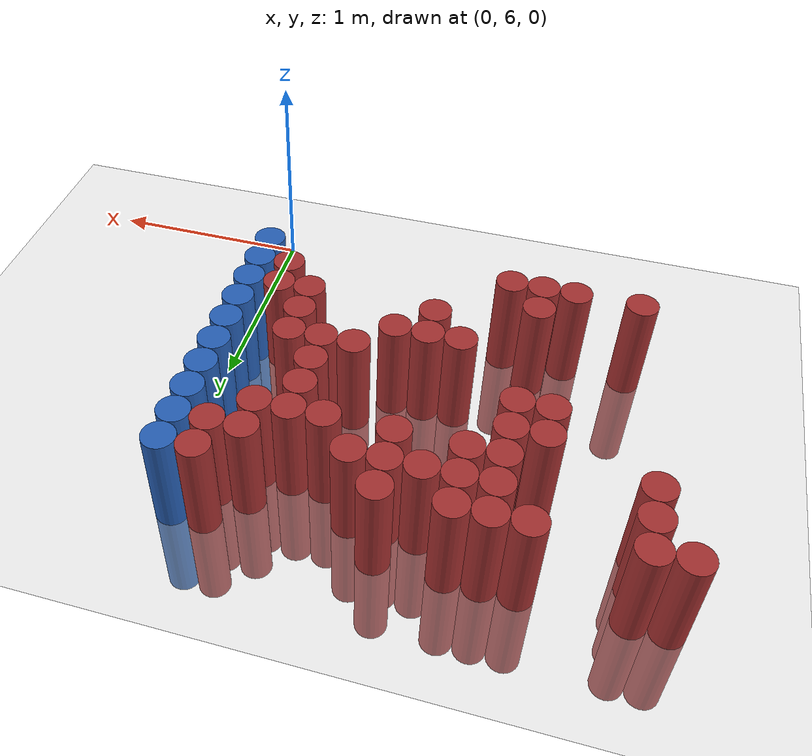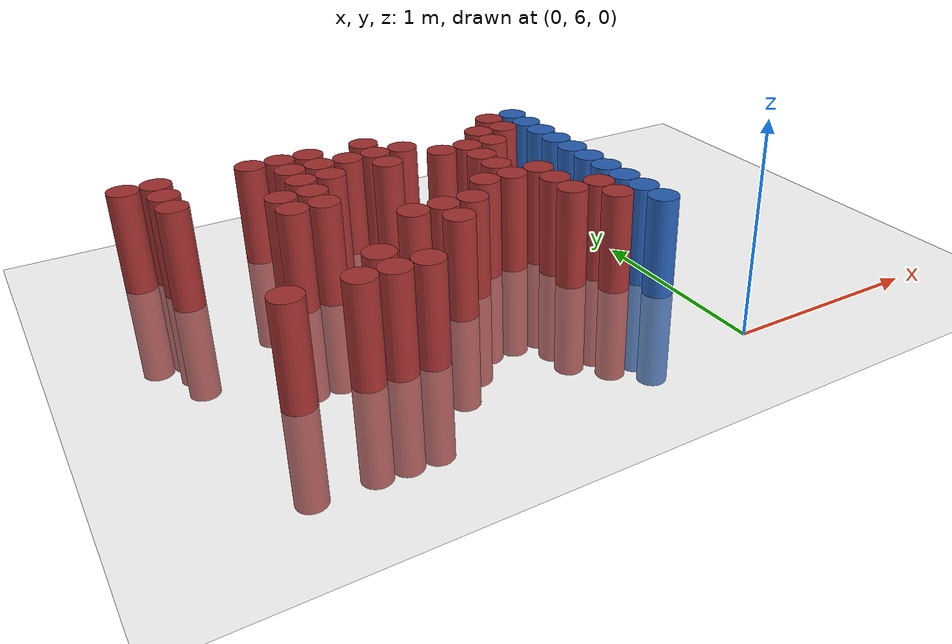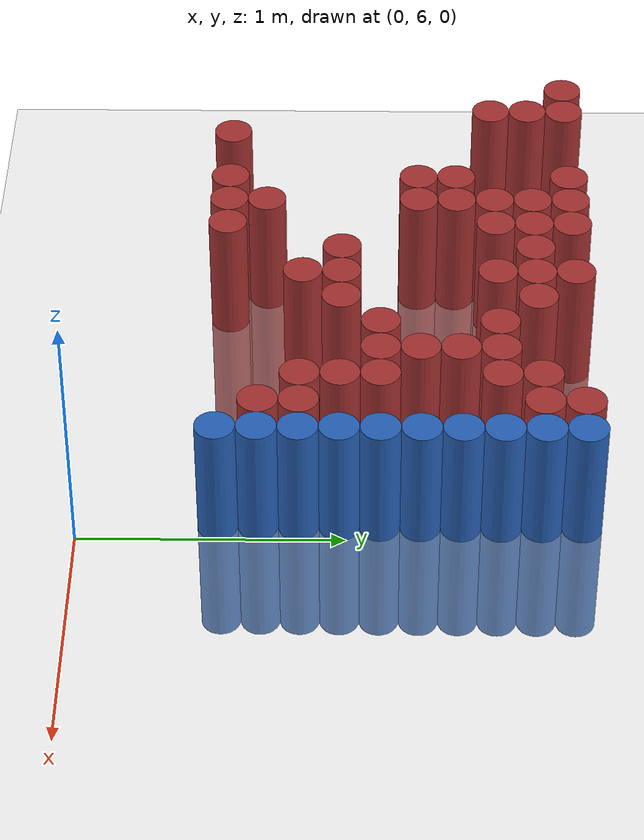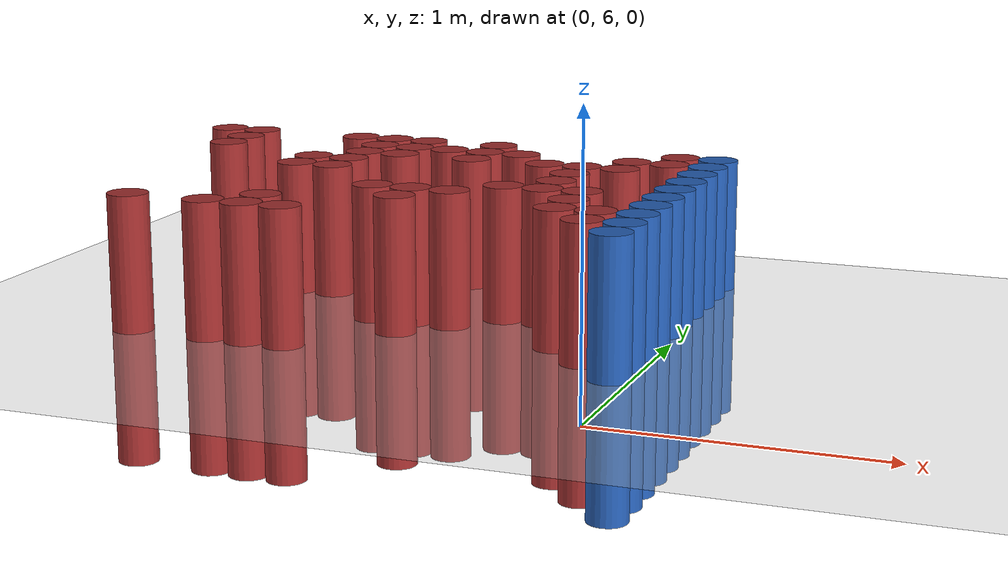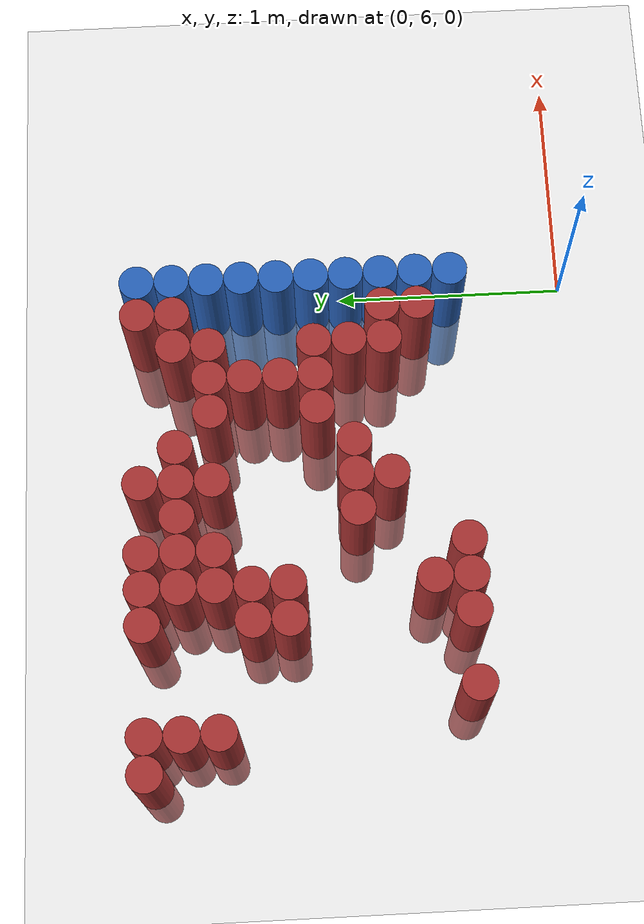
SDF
<sdf version="1.6">
 <world name="default">
  <model name="ground_plane">
   <static>1</static>
   <link name="link">
    <collision name="collision">
     <geometry><plane><normal>0 0 1</normal><size>100 100</size></plane></geometry>
     <surface><friction><ode><mu>100</mu><mu2>50</mu2></ode></friction></surface>
    </collision>
    <visual name="visual">
     <cast_shadows>0</cast_shadows>
     <geometry><plane><normal>0 0 1</normal><size>100 100</size></plane></geometry>
     <material>
      <script><uri>file://media/materials/scripts/gazebo.material</uri><name>Gazebo/Grey</name></script>
     </material>
    </visual>
   </link>
  </model>
  <model name="unit_cylinder_182">
   <static>1</static>
   <pose>-2.175000 7.875000 0.000000 0.000000 0.000000 0.000000</pose>
   <link name="link">
    <inertial>
     <mass>1</mass>
     <inertia><ixx>0.145833</ixx><ixy>0</ixy><ixz>0</ixz><iyy>0.145833</iyy><iyz>0</iyz><izz>0.125</izz></inertia>
    </inertial>
    <collision name="collision">
     <geometry><cylinder><radius>0.075000</radius><length>1</length></cylinder></geometry>
    </collision>
    <visual name="visual">
     <geometry><cylinder><radius>0.075000</radius><length>1</length></cylinder></geometry>
     <material>
      <ambient>0.648000 0.192000 0.192000 1</ambient>
      <diffuse>0.648000 0.192000 0.192000 1</diffuse>
     </material>
     <material>
      <script><name>Gazebo/Grey</name><uri>file://media/materials/scripts/gazebo.material</uri></script>
     </material>
    </visual>
   </link>
  </model>
  <model name="unit_cylinder_193">
   <static>1</static>
   <pose>-2.025000 7.575000 0.000000 0.000000 0.000000 0.000000</pose>
   <link name="link">
    <inertial>
     <mass>1</mass>
     <inertia><ixx>0.145833</ixx><ixy>0</ixy><ixz>0</ixz><iyy>0.145833</iyy><iyz>0</iyz><izz>0.125</izz></inertia>
    </inertial>
    <collision name="collision">
     <geometry><cylinder><radius>0.075000</radius><length>1</length></cylinder></geometry>
    </collision>
    <visual name="visual">
     <geometry><cylinder><radius>0.075000</radius><length>1</length></cylinder></geometry>
     <material>
      <ambient>0.648000 0.192000 0.192000 1</ambient>
      <diffuse>0.648000 0.192000 0.192000 1</diffuse>
     </material>
     <material>
      <script><name>Gazebo/Grey</name><uri>file://media/materials/scripts/gazebo.material</uri></script>
     </material>
    </visual>
   </link>
  </model>
  <model name="unit_cylinder_194">
   <static>1</static>
   <pose>-2.025000 7.725000 0.000000 0.000000 0.000000 0.000000</pose>
   <link name="link">
    <inertial>
     <mass>1</mass>
     <inertia><ixx>0.145833</ixx><ixy>0</ixy><ixz>0</ixz><iyy>0.145833</iyy><iyz>0</iyz><izz>0.125</izz></inertia>
    </inertial>
    <collision name="collision">
     <geometry><cylinder><radius>0.075000</radius><length>1</length></cylinder></geometry>
    </collision>
    <visual name="visual">
     <geometry><cylinder><radius>0.075000</radius><length>1</length></cylinder></geometry>
     <material>
      <ambient>0.648000 0.192000 0.192000 1</ambient>
      <diffuse>0.648000 0.192000 0.192000 1</diffuse>
     </material>
     <material>
      <script><name>Gazebo/Grey</name><uri>file://media/materials/scripts/gazebo.material</uri></script>
     </material>
    </visual>
   </link>
  </model>
  <model name="unit_cylinder_195">
   <static>1</static>
   <pose>-2.025000 7.875000 0.000000 0.000000 0.000000 0.000000</pose>
   <link name="link">
    <inertial>
     <mass>1</mass>
     <inertia><ixx>0.145833</ixx><ixy>0</ixy><ixz>0</ixz><iyy>0.145833</iyy><iyz>0</iyz><izz>0.125</izz></inertia>
    </inertial>
    <collision name="collision">
     <geometry><cylinder><radius>0.075000</radius><length>1</length></cylinder></geometry>
    </collision>
    <visual name="visual">
     <geometry><cylinder><radius>0.075000</radius><length>1</length></cylinder></geometry>
     <material>
      <ambient>0.648000 0.192000 0.192000 1</ambient>
      <diffuse>0.648000 0.192000 0.192000 1</diffuse>
     </material>
     <material>
      <script><name>Gazebo/Grey</name><uri>file://media/materials/scripts/gazebo.material</uri></script>
     </material>
    </visual>
   </link>
  </model>
  <model name="unit_cylinder_202">
   <static>1</static>
   <pose>-1.875000 6.525000 0.000000 0.000000 0.000000 0.000000</pose>
   <link name="link">
    <inertial>
     <mass>1</mass>
     <inertia><ixx>0.145833</ixx><ixy>0</ixy><ixz>0</ixz><iyy>0.145833</iyy><iyz>0</iyz><izz>0.125</izz></inertia>
    </inertial>
    <collision name="collision">
     <geometry><cylinder><radius>0.075000</radius><length>1</length></cylinder></geometry>
    </collision>
    <visual name="visual">
     <geometry><cylinder><radius>0.075000</radius><length>1</length></cylinder></geometry>
     <material>
      <ambient>0.648000 0.192000 0.192000 1</ambient>
      <diffuse>0.648000 0.192000 0.192000 1</diffuse>
     </material>
     <material>
      <script><name>Gazebo/Grey</name><uri>file://media/materials/scripts/gazebo.material</uri></script>
     </material>
    </visual>
   </link>
  </model>
  <model name="unit_cylinder_213">
   <static>1</static>
   <pose>-1.575000 6.525000 0.000000 0.000000 0.000000 0.000000</pose>
   <link name="link">
    <inertial>
     <mass>1</mass>
     <inertia><ixx>0.145833</ixx><ixy>0</ixy><ixz>0</ixz><iyy>0.145833</iyy><iyz>0</iyz><izz>0.125</izz></inertia>
    </inertial>
    <collision name="collision">
     <geometry><cylinder><radius>0.075000</radius><length>1</length></cylinder></geometry>
    </collision>
    <visual name="visual">
     <geometry><cylinder><radius>0.075000</radius><length>1</length></cylinder></geometry>
     <material>
      <ambient>0.648000 0.192000 0.192000 1</ambient>
      <diffuse>0.648000 0.192000 0.192000 1</diffuse>
     </material>
     <material>
      <script><name>Gazebo/Grey</name><uri>file://media/materials/scripts/gazebo.material</uri></script>
     </material>
    </visual>
   </link>
  </model>
  <model name="unit_cylinder_214">
   <static>1</static>
   <pose>-1.575000 7.275000 0.000000 0.000000 0.000000 0.000000</pose>
   <link name="link">
    <inertial>
     <mass>1</mass>
     <inertia><ixx>0.145833</ixx><ixy>0</ixy><ixz>0</ixz><iyy>0.145833</iyy><iyz>0</iyz><izz>0.125</izz></inertia>
    </inertial>
    <collision name="collision">
     <geometry><cylinder><radius>0.075000</radius><length>1</length></cylinder></geometry>
    </collision>
    <visual name="visual">
     <geometry><cylinder><radius>0.075000</radius><length>1</length></cylinder></geometry>
     <material>
      <ambient>0.648000 0.192000 0.192000 1</ambient>
      <diffuse>0.648000 0.192000 0.192000 1</diffuse>
     </material>
     <material>
      <script><name>Gazebo/Grey</name><uri>file://media/materials/scripts/gazebo.material</uri></script>
     </material>
    </visual>
   </link>
  </model>
  <model name="unit_cylinder_215">
   <static>1</static>
   <pose>-1.575000 7.425000 0.000000 0.000000 0.000000 0.000000</pose>
   <link name="link">
    <inertial>
     <mass>1</mass>
     <inertia><ixx>0.145833</ixx><ixy>0</ixy><ixz>0</ixz><iyy>0.145833</iyy><iyz>0</iyz><izz>0.125</izz></inertia>
    </inertial>
    <collision name="collision">
     <geometry><cylinder><radius>0.075000</radius><length>1</length></cylinder></geometry>
    </collision>
    <visual name="visual">
     <geometry><cylinder><radius>0.075000</radius><length>1</length></cylinder></geometry>
     <material>
      <ambient>0.648000 0.192000 0.192000 1</ambient>
      <diffuse>0.648000 0.192000 0.192000 1</diffuse>
     </material>
     <material>
      <script><name>Gazebo/Grey</name><uri>file://media/materials/scripts/gazebo.material</uri></script>
     </material>
    </visual>
   </link>
  </model>
  <model name="unit_cylinder_216">
   <static>1</static>
   <pose>-1.575000 7.875000 0.000000 0.000000 0.000000 0.000000</pose>
   <link name="link">
    <inertial>
     <mass>1</mass>
     <inertia><ixx>0.145833</ixx><ixy>0</ixy><ixz>0</ixz><iyy>0.145833</iyy><iyz>0</iyz><izz>0.125</izz></inertia>
    </inertial>
    <collision name="collision">
     <geometry><cylinder><radius>0.075000</radius><length>1</length></cylinder></geometry>
    </collision>
    <visual name="visual">
     <geometry><cylinder><radius>0.075000</radius><length>1</length></cylinder></geometry>
     <material>
      <ambient>0.648000 0.192000 0.192000 1</ambient>
      <diffuse>0.648000 0.192000 0.192000 1</diffuse>
     </material>
     <material>
      <script><name>Gazebo/Grey</name><uri>file://media/materials/scripts/gazebo.material</uri></script>
     </material>
    </visual>
   </link>
  </model>
  <model name="unit_cylinder_223">
   <static>1</static>
   <pose>-1.425000 6.525000 0.000000 0.000000 0.000000 0.000000</pose>
   <link name="link">
    <inertial>
     <mass>1</mass>
     <inertia><ixx>0.145833</ixx><ixy>0</ixy><ixz>0</ixz><iyy>0.145833</iyy><iyz>0</iyz><izz>0.125</izz></inertia>
    </inertial>
    <collision name="collision">
     <geometry><cylinder><radius>0.075000</radius><length>1</length></cylinder></geometry>
    </collision>
    <visual name="visual">
     <geometry><cylinder><radius>0.075000</radius><length>1</length></cylinder></geometry>
     <material>
      <ambient>0.648000 0.192000 0.192000 1</ambient>
      <diffuse>0.648000 0.192000 0.192000 1</diffuse>
     </material>
     <material>
      <script><name>Gazebo/Grey</name><uri>file://media/materials/scripts/gazebo.material</uri></script>
     </material>
    </visual>
   </link>
  </model>
  <model name="unit_cylinder_224">
   <static>1</static>
   <pose>-1.425000 6.675000 0.000000 0.000000 0.000000 0.000000</pose>
   <link name="link">
    <inertial>
     <mass>1</mass>
     <inertia><ixx>0.145833</ixx><ixy>0</ixy><ixz>0</ixz><iyy>0.145833</iyy><iyz>0</iyz><izz>0.125</izz></inertia>
    </inertial>
    <collision name="collision">
     <geometry><cylinder><radius>0.075000</radius><length>1</length></cylinder></geometry>
    </collision>
    <visual name="visual">
     <geometry><cylinder><radius>0.075000</radius><length>1</length></cylinder></geometry>
     <material>
      <ambient>0.648000 0.192000 0.192000 1</ambient>
      <diffuse>0.648000 0.192000 0.192000 1</diffuse>
     </material>
     <material>
      <script><name>Gazebo/Grey</name><uri>file://media/materials/scripts/gazebo.material</uri></script>
     </material>
    </visual>
   </link>
  </model>
  <model name="unit_cylinder_225">
   <static>1</static>
   <pose>-1.425000 7.275000 0.000000 0.000000 0.000000 0.000000</pose>
   <link name="link">
    <inertial>
     <mass>1</mass>
     <inertia><ixx>0.145833</ixx><ixy>0</ixy><ixz>0</ixz><iyy>0.145833</iyy><iyz>0</iyz><izz>0.125</izz></inertia>
    </inertial>
    <collision name="collision">
     <geometry><cylinder><radius>0.075000</radius><length>1</length></cylinder></geometry>
    </collision>
    <visual name="visual">
     <geometry><cylinder><radius>0.075000</radius><length>1</length></cylinder></geometry>
     <material>
      <ambient>0.648000 0.192000 0.192000 1</ambient>
      <diffuse>0.648000 0.192000 0.192000 1</diffuse>
     </material>
     <material>
      <script><name>Gazebo/Grey</name><uri>file://media/materials/scripts/gazebo.material</uri></script>
     </material>
    </visual>
   </link>
  </model>
  <model name="unit_cylinder_226">
   <static>1</static>
   <pose>-1.425000 7.425000 0.000000 0.000000 0.000000 0.000000</pose>
   <link name="link">
    <inertial>
     <mass>1</mass>
     <inertia><ixx>0.145833</ixx><ixy>0</ixy><ixz>0</ixz><iyy>0.145833</iyy><iyz>0</iyz><izz>0.125</izz></inertia>
    </inertial>
    <collision name="collision">
     <geometry><cylinder><radius>0.075000</radius><length>1</length></cylinder></geometry>
    </collision>
    <visual name="visual">
     <geometry><cylinder><radius>0.075000</radius><length>1</length></cylinder></geometry>
     <material>
      <ambient>0.648000 0.192000 0.192000 1</ambient>
      <diffuse>0.648000 0.192000 0.192000 1</diffuse>
     </material>
     <material>
      <script><name>Gazebo/Grey</name><uri>file://media/materials/scripts/gazebo.material</uri></script>
     </material>
    </visual>
   </link>
  </model>
  <model name="unit_cylinder_227">
   <static>1</static>
   <pose>-1.425000 7.575000 0.000000 0.000000 0.000000 0.000000</pose>
   <link name="link">
    <inertial>
     <mass>1</mass>
     <inertia><ixx>0.145833</ixx><ixy>0</ixy><ixz>0</ixz><iyy>0.145833</iyy><iyz>0</iyz><izz>0.125</izz></inertia>
    </inertial>
    <collision name="collision">
     <geometry><cylinder><radius>0.075000</radius><length>1</length></cylinder></geometry>
    </collision>
    <visual name="visual">
     <geometry><cylinder><radius>0.075000</radius><length>1</length></cylinder></geometry>
     <material>
      <ambient>0.648000 0.192000 0.192000 1</ambient>
      <diffuse>0.648000 0.192000 0.192000 1</diffuse>
     </material>
     <material>
      <script><name>Gazebo/Grey</name><uri>file://media/materials/scripts/gazebo.material</uri></script>
     </material>
    </visual>
   </link>
  </model>
  <model name="unit_cylinder_228">
   <static>1</static>
   <pose>-1.425000 7.725000 0.000000 0.000000 0.000000 0.000000</pose>
   <link name="link">
    <inertial>
     <mass>1</mass>
     <inertia><ixx>0.145833</ixx><ixy>0</ixy><ixz>0</ixz><iyy>0.145833</iyy><iyz>0</iyz><izz>0.125</izz></inertia>
    </inertial>
    <collision name="collision">
     <geometry><cylinder><radius>0.075000</radius><length>1</length></cylinder></geometry>
    </collision>
    <visual name="visual">
     <geometry><cylinder><radius>0.075000</radius><length>1</length></cylinder></geometry>
     <material>
      <ambient>0.648000 0.192000 0.192000 1</ambient>
      <diffuse>0.648000 0.192000 0.192000 1</diffuse>
     </material>
     <material>
      <script><name>Gazebo/Grey</name><uri>file://media/materials/scripts/gazebo.material</uri></script>
     </material>
    </visual>
   </link>
  </model>
  <model name="unit_cylinder_229">
   <static>1</static>
   <pose>-1.425000 7.875000 0.000000 0.000000 0.000000 0.000000</pose>
   <link name="link">
    <inertial>
     <mass>1</mass>
     <inertia><ixx>0.145833</ixx><ixy>0</ixy><ixz>0</ixz><iyy>0.145833</iyy><iyz>0</iyz><izz>0.125</izz></inertia>
    </inertial>
    <collision name="collision">
     <geometry><cylinder><radius>0.075000</radius><length>1</length></cylinder></geometry>
    </collision>
    <visual name="visual">
     <geometry><cylinder><radius>0.075000</radius><length>1</length></cylinder></geometry>
     <material>
      <ambient>0.648000 0.192000 0.192000 1</ambient>
      <diffuse>0.648000 0.192000 0.192000 1</diffuse>
     </material>
     <material>
      <script><name>Gazebo/Grey</name><uri>file://media/materials/scripts/gazebo.material</uri></script>
     </material>
    </visual>
   </link>
  </model>
  <model name="unit_cylinder_235">
   <static>1</static>
   <pose>-1.275000 6.525000 0.000000 0.000000 0.000000 0.000000</pose>
   <link name="link">
    <inertial>
     <mass>1</mass>
     <inertia><ixx>0.145833</ixx><ixy>0</ixy><ixz>0</ixz><iyy>0.145833</iyy><iyz>0</iyz><izz>0.125</izz></inertia>
    </inertial>
    <collision name="collision">
     <geometry><cylinder><radius>0.075000</radius><length>1</length></cylinder></geometry>
    </collision>
    <visual name="visual">
     <geometry><cylinder><radius>0.075000</radius><length>1</length></cylinder></geometry>
     <material>
      <ambient>0.648000 0.192000 0.192000 1</ambient>
      <diffuse>0.648000 0.192000 0.192000 1</diffuse>
     </material>
     <material>
      <script><name>Gazebo/Grey</name><uri>file://media/materials/scripts/gazebo.material</uri></script>
     </material>
    </visual>
   </link>
  </model>
  <model name="unit_cylinder_236">
   <static>1</static>
   <pose>-1.275000 7.575000 0.000000 0.000000 0.000000 0.000000</pose>
   <link name="link">
    <inertial>
     <mass>1</mass>
     <inertia><ixx>0.145833</ixx><ixy>0</ixy><ixz>0</ixz><iyy>0.145833</iyy><iyz>0</iyz><izz>0.125</izz></inertia>
    </inertial>
    <collision name="collision">
     <geometry><cylinder><radius>0.075000</radius><length>1</length></cylinder></geometry>
    </collision>
    <visual name="visual">
     <geometry><cylinder><radius>0.075000</radius><length>1</length></cylinder></geometry>
     <material>
      <ambient>0.648000 0.192000 0.192000 1</ambient>
      <diffuse>0.648000 0.192000 0.192000 1</diffuse>
     </material>
     <material>
      <script><name>Gazebo/Grey</name><uri>file://media/materials/scripts/gazebo.material</uri></script>
     </material>
    </visual>
   </link>
  </model>
  <model name="unit_cylinder_237">
   <static>1</static>
   <pose>-1.275000 7.725000 0.000000 0.000000 0.000000 0.000000</pose>
   <link name="link">
    <inertial>
     <mass>1</mass>
     <inertia><ixx>0.145833</ixx><ixy>0</ixy><ixz>0</ixz><iyy>0.145833</iyy><iyz>0</iyz><izz>0.125</izz></inertia>
    </inertial>
    <collision name="collision">
     <geometry><cylinder><radius>0.075000</radius><length>1</length></cylinder></geometry>
    </collision>
    <visual name="visual">
     <geometry><cylinder><radius>0.075000</radius><length>1</length></cylinder></geometry>
     <material>
      <ambient>0.648000 0.192000 0.192000 1</ambient>
      <diffuse>0.648000 0.192000 0.192000 1</diffuse>
     </material>
     <material>
      <script><name>Gazebo/Grey</name><uri>file://media/materials/scripts/gazebo.material</uri></script>
     </material>
    </visual>
   </link>
  </model>
  <model name="unit_cylinder_238">
   <static>1</static>
   <pose>-1.275000 7.875000 0.000000 0.000000 0.000000 0.000000</pose>
   <link name="link">
    <inertial>
     <mass>1</mass>
     <inertia><ixx>0.145833</ixx><ixy>0</ixy><ixz>0</ixz><iyy>0.145833</iyy><iyz>0</iyz><izz>0.125</izz></inertia>
    </inertial>
    <collision name="collision">
     <geometry><cylinder><radius>0.075000</radius><length>1</length></cylinder></geometry>
    </collision>
    <visual name="visual">
     <geometry><cylinder><radius>0.075000</radius><length>1</length></cylinder></geometry>
     <material>
      <ambient>0.648000 0.192000 0.192000 1</ambient>
      <diffuse>0.648000 0.192000 0.192000 1</diffuse>
     </material>
     <material>
      <script><name>Gazebo/Grey</name><uri>file://media/materials/scripts/gazebo.material</uri></script>
     </material>
    </visual>
   </link>
  </model>
  <model name="unit_cylinder_245">
   <static>1</static>
   <pose>-1.125000 6.975000 0.000000 0.000000 0.000000 0.000000</pose>
   <link name="link">
    <inertial>
     <mass>1</mass>
     <inertia><ixx>0.145833</ixx><ixy>0</ixy><ixz>0</ixz><iyy>0.145833</iyy><iyz>0</iyz><izz>0.125</izz></inertia>
    </inertial>
    <collision name="collision">
     <geometry><cylinder><radius>0.075000</radius><length>1</length></cylinder></geometry>
    </collision>
    <visual name="visual">
     <geometry><cylinder><radius>0.075000</radius><length>1</length></cylinder></geometry>
     <material>
      <ambient>0.648000 0.192000 0.192000 1</ambient>
      <diffuse>0.648000 0.192000 0.192000 1</diffuse>
     </material>
     <material>
      <script><name>Gazebo/Grey</name><uri>file://media/materials/scripts/gazebo.material</uri></script>
     </material>
    </visual>
   </link>
  </model>
  <model name="unit_cylinder_246">
   <static>1</static>
   <pose>-1.125000 7.725000 0.000000 0.000000 0.000000 0.000000</pose>
   <link name="link">
    <inertial>
     <mass>1</mass>
     <inertia><ixx>0.145833</ixx><ixy>0</ixy><ixz>0</ixz><iyy>0.145833</iyy><iyz>0</iyz><izz>0.125</izz></inertia>
    </inertial>
    <collision name="collision">
     <geometry><cylinder><radius>0.075000</radius><length>1</length></cylinder></geometry>
    </collision>
    <visual name="visual">
     <geometry><cylinder><radius>0.075000</radius><length>1</length></cylinder></geometry>
     <material>
      <ambient>0.648000 0.192000 0.192000 1</ambient>
      <diffuse>0.648000 0.192000 0.192000 1</diffuse>
     </material>
     <material>
      <script><name>Gazebo/Grey</name><uri>file://media/materials/scripts/gazebo.material</uri></script>
     </material>
    </visual>
   </link>
  </model>
  <model name="unit_cylinder_252">
   <static>1</static>
   <pose>-0.975000 6.825000 0.000000 0.000000 0.000000 0.000000</pose>
   <link name="link">
    <inertial>
     <mass>1</mass>
     <inertia><ixx>0.145833</ixx><ixy>0</ixy><ixz>0</ixz><iyy>0.145833</iyy><iyz>0</iyz><izz>0.125</izz></inertia>
    </inertial>
    <collision name="collision">
     <geometry><cylinder><radius>0.075000</radius><length>1</length></cylinder></geometry>
    </collision>
    <visual name="visual">
     <geometry><cylinder><radius>0.075000</radius><length>1</length></cylinder></geometry>
     <material>
      <ambient>0.648000 0.192000 0.192000 1</ambient>
      <diffuse>0.648000 0.192000 0.192000 1</diffuse>
     </material>
     <material>
      <script><name>Gazebo/Grey</name><uri>file://media/materials/scripts/gazebo.material</uri></script>
     </material>
    </visual>
   </link>
  </model>
  <model name="unit_cylinder_253">
   <static>1</static>
   <pose>-0.975000 6.975000 0.000000 0.000000 0.000000 0.000000</pose>
   <link name="link">
    <inertial>
     <mass>1</mass>
     <inertia><ixx>0.145833</ixx><ixy>0</ixy><ixz>0</ixz><iyy>0.145833</iyy><iyz>0</iyz><izz>0.125</izz></inertia>
    </inertial>
    <collision name="collision">
     <geometry><cylinder><radius>0.075000</radius><length>1</length></cylinder></geometry>
    </collision>
    <visual name="visual">
     <geometry><cylinder><radius>0.075000</radius><length>1</length></cylinder></geometry>
     <material>
      <ambient>0.648000 0.192000 0.192000 1</ambient>
      <diffuse>0.648000 0.192000 0.192000 1</diffuse>
     </material>
     <material>
      <script><name>Gazebo/Grey</name><uri>file://media/materials/scripts/gazebo.material</uri></script>
     </material>
    </visual>
   </link>
  </model>
  <model name="unit_cylinder_254">
   <static>1</static>
   <pose>-0.975000 7.575000 0.000000 0.000000 0.000000 0.000000</pose>
   <link name="link">
    <inertial>
     <mass>1</mass>
     <inertia><ixx>0.145833</ixx><ixy>0</ixy><ixz>0</ixz><iyy>0.145833</iyy><iyz>0</iyz><izz>0.125</izz></inertia>
    </inertial>
    <collision name="collision">
     <geometry><cylinder><radius>0.075000</radius><length>1</length></cylinder></geometry>
    </collision>
    <visual name="visual">
     <geometry><cylinder><radius>0.075000</radius><length>1</length></cylinder></geometry>
     <material>
      <ambient>0.648000 0.192000 0.192000 1</ambient>
      <diffuse>0.648000 0.192000 0.192000 1</diffuse>
     </material>
     <material>
      <script><name>Gazebo/Grey</name><uri>file://media/materials/scripts/gazebo.material</uri></script>
     </material>
    </visual>
   </link>
  </model>
  <model name="unit_cylinder_255">
   <static>1</static>
   <pose>-0.975000 7.725000 0.000000 0.000000 0.000000 0.000000</pose>
   <link name="link">
    <inertial>
     <mass>1</mass>
     <inertia><ixx>0.145833</ixx><ixy>0</ixy><ixz>0</ixz><iyy>0.145833</iyy><iyz>0</iyz><izz>0.125</izz></inertia>
    </inertial>
    <collision name="collision">
     <geometry><cylinder><radius>0.075000</radius><length>1</length></cylinder></geometry>
    </collision>
    <visual name="visual">
     <geometry><cylinder><radius>0.075000</radius><length>1</length></cylinder></geometry>
     <material>
      <ambient>0.648000 0.192000 0.192000 1</ambient>
      <diffuse>0.648000 0.192000 0.192000 1</diffuse>
     </material>
     <material>
      <script><name>Gazebo/Grey</name><uri>file://media/materials/scripts/gazebo.material</uri></script>
     </material>
    </visual>
   </link>
  </model>
  <model name="unit_cylinder_256">
   <static>1</static>
   <pose>-0.975000 7.875000 0.000000 0.000000 0.000000 0.000000</pose>
   <link name="link">
    <inertial>
     <mass>1</mass>
     <inertia><ixx>0.145833</ixx><ixy>0</ixy><ixz>0</ixz><iyy>0.145833</iyy><iyz>0</iyz><izz>0.125</izz></inertia>
    </inertial>
    <collision name="collision">
     <geometry><cylinder><radius>0.075000</radius><length>1</length></cylinder></geometry>
    </collision>
    <visual name="visual">
     <geometry><cylinder><radius>0.075000</radius><length>1</length></cylinder></geometry>
     <material>
      <ambient>0.648000 0.192000 0.192000 1</ambient>
      <diffuse>0.648000 0.192000 0.192000 1</diffuse>
     </material>
     <material>
      <script><name>Gazebo/Grey</name><uri>file://media/materials/scripts/gazebo.material</uri></script>
     </material>
    </visual>
   </link>
  </model>
  <model name="unit_cylinder_259">
   <static>1</static>
   <pose>-0.825000 6.975000 0.000000 0.000000 0.000000 0.000000</pose>
   <link name="link">
    <inertial>
     <mass>1</mass>
     <inertia><ixx>0.145833</ixx><ixy>0</ixy><ixz>0</ixz><iyy>0.145833</iyy><iyz>0</iyz><izz>0.125</izz></inertia>
    </inertial>
    <collision name="collision">
     <geometry><cylinder><radius>0.075000</radius><length>1</length></cylinder></geometry>
    </collision>
    <visual name="visual">
     <geometry><cylinder><radius>0.075000</radius><length>1</length></cylinder></geometry>
     <material>
      <ambient>0.648000 0.192000 0.192000 1</ambient>
      <diffuse>0.648000 0.192000 0.192000 1</diffuse>
     </material>
     <material>
      <script><name>Gazebo/Grey</name><uri>file://media/materials/scripts/gazebo.material</uri></script>
     </material>
    </visual>
   </link>
  </model>
  <model name="unit_cylinder_260">
   <static>1</static>
   <pose>-0.825000 7.725000 0.000000 0.000000 0.000000 0.000000</pose>
   <link name="link">
    <inertial>
     <mass>1</mass>
     <inertia><ixx>0.145833</ixx><ixy>0</ixy><ixz>0</ixz><iyy>0.145833</iyy><iyz>0</iyz><izz>0.125</izz></inertia>
    </inertial>
    <collision name="collision">
     <geometry><cylinder><radius>0.075000</radius><length>1</length></cylinder></geometry>
    </collision>
    <visual name="visual">
     <geometry><cylinder><radius>0.075000</radius><length>1</length></cylinder></geometry>
     <material>
      <ambient>0.648000 0.192000 0.192000 1</ambient>
      <diffuse>0.648000 0.192000 0.192000 1</diffuse>
     </material>
     <material>
      <script><name>Gazebo/Grey</name><uri>file://media/materials/scripts/gazebo.material</uri></script>
     </material>
    </visual>
   </link>
  </model>
  <model name="unit_cylinder_262">
   <static>1</static>
   <pose>-0.675000 7.125000 0.000000 0.000000 0.000000 0.000000</pose>
   <link name="link">
    <inertial>
     <mass>1</mass>
     <inertia><ixx>0.145833</ixx><ixy>0</ixy><ixz>0</ixz><iyy>0.145833</iyy><iyz>0</iyz><izz>0.125</izz></inertia>
    </inertial>
    <collision name="collision">
     <geometry><cylinder><radius>0.075000</radius><length>1</length></cylinder></geometry>
    </collision>
    <visual name="visual">
     <geometry><cylinder><radius>0.075000</radius><length>1</length></cylinder></geometry>
     <material>
      <ambient>0.648000 0.192000 0.192000 1</ambient>
      <diffuse>0.648000 0.192000 0.192000 1</diffuse>
     </material>
     <material>
      <script><name>Gazebo/Grey</name><uri>file://media/materials/scripts/gazebo.material</uri></script>
     </material>
    </visual>
   </link>
  </model>
  <model name="unit_cylinder_263">
   <static>1</static>
   <pose>-0.675000 7.575000 0.000000 0.000000 0.000000 0.000000</pose>
   <link name="link">
    <inertial>
     <mass>1</mass>
     <inertia><ixx>0.145833</ixx><ixy>0</ixy><ixz>0</ixz><iyy>0.145833</iyy><iyz>0</iyz><izz>0.125</izz></inertia>
    </inertial>
    <collision name="collision">
     <geometry><cylinder><radius>0.075000</radius><length>1</length></cylinder></geometry>
    </collision>
    <visual name="visual">
     <geometry><cylinder><radius>0.075000</radius><length>1</length></cylinder></geometry>
     <material>
      <ambient>0.648000 0.192000 0.192000 1</ambient>
      <diffuse>0.648000 0.192000 0.192000 1</diffuse>
     </material>
     <material>
      <script><name>Gazebo/Grey</name><uri>file://media/materials/scripts/gazebo.material</uri></script>
     </material>
    </visual>
   </link>
  </model>
  <model name="unit_cylinder_267">
   <static>1</static>
   <pose>-0.525000 7.125000 0.000000 0.000000 0.000000 0.000000</pose>
   <link name="link">
    <inertial>
     <mass>1</mass>
     <inertia><ixx>0.145833</ixx><ixy>0</ixy><ixz>0</ixz><iyy>0.145833</iyy><iyz>0</iyz><izz>0.125</izz></inertia>
    </inertial>
    <collision name="collision">
     <geometry><cylinder><radius>0.075000</radius><length>1</length></cylinder></geometry>
    </collision>
    <visual name="visual">
     <geometry><cylinder><radius>0.075000</radius><length>1</length></cylinder></geometry>
     <material>
      <ambient>0.648000 0.192000 0.192000 1</ambient>
      <diffuse>0.648000 0.192000 0.192000 1</diffuse>
     </material>
     <material>
      <script><name>Gazebo/Grey</name><uri>file://media/materials/scripts/gazebo.material</uri></script>
     </material>
    </visual>
   </link>
  </model>
  <model name="unit_cylinder_268">
   <static>1</static>
   <pose>-0.525000 7.275000 0.000000 0.000000 0.000000 0.000000</pose>
   <link name="link">
    <inertial>
     <mass>1</mass>
     <inertia><ixx>0.145833</ixx><ixy>0</ixy><ixz>0</ixz><iyy>0.145833</iyy><iyz>0</iyz><izz>0.125</izz></inertia>
    </inertial>
    <collision name="collision">
     <geometry><cylinder><radius>0.075000</radius><length>1</length></cylinder></geometry>
    </collision>
    <visual name="visual">
     <geometry><cylinder><radius>0.075000</radius><length>1</length></cylinder></geometry>
     <material>
      <ambient>0.648000 0.192000 0.192000 1</ambient>
      <diffuse>0.648000 0.192000 0.192000 1</diffuse>
     </material>
     <material>
      <script><name>Gazebo/Grey</name><uri>file://media/materials/scripts/gazebo.material</uri></script>
     </material>
    </visual>
   </link>
  </model>
  <model name="unit_cylinder_269">
   <static>1</static>
   <pose>-0.525000 7.425000 0.000000 0.000000 0.000000 0.000000</pose>
   <link name="link">
    <inertial>
     <mass>1</mass>
     <inertia><ixx>0.145833</ixx><ixy>0</ixy><ixz>0</ixz><iyy>0.145833</iyy><iyz>0</iyz><izz>0.125</izz></inertia>
    </inertial>
    <collision name="collision">
     <geometry><cylinder><radius>0.075000</radius><length>1</length></cylinder></geometry>
    </collision>
    <visual name="visual">
     <geometry><cylinder><radius>0.075000</radius><length>1</length></cylinder></geometry>
     <material>
      <ambient>0.648000 0.192000 0.192000 1</ambient>
      <diffuse>0.648000 0.192000 0.192000 1</diffuse>
     </material>
     <material>
      <script><name>Gazebo/Grey</name><uri>file://media/materials/scripts/gazebo.material</uri></script>
     </material>
    </visual>
   </link>
  </model>
  <model name="unit_cylinder_270">
   <static>1</static>
   <pose>-0.525000 7.575000 0.000000 0.000000 0.000000 0.000000</pose>
   <link name="link">
    <inertial>
     <mass>1</mass>
     <inertia><ixx>0.145833</ixx><ixy>0</ixy><ixz>0</ixz><iyy>0.145833</iyy><iyz>0</iyz><izz>0.125</izz></inertia>
    </inertial>
    <collision name="collision">
     <geometry><cylinder><radius>0.075000</radius><length>1</length></cylinder></geometry>
    </collision>
    <visual name="visual">
     <geometry><cylinder><radius>0.075000</radius><length>1</length></cylinder></geometry>
     <material>
      <ambient>0.648000 0.192000 0.192000 1</ambient>
      <diffuse>0.648000 0.192000 0.192000 1</diffuse>
     </material>
     <material>
      <script><name>Gazebo/Grey</name><uri>file://media/materials/scripts/gazebo.material</uri></script>
     </material>
    </visual>
   </link>
  </model>
  <model name="unit_cylinder_273">
   <static>1</static>
   <pose>-0.375000 6.825000 0.000000 0.000000 0.000000 0.000000</pose>
   <link name="link">
    <inertial>
     <mass>1</mass>
     <inertia><ixx>0.145833</ixx><ixy>0</ixy><ixz>0</ixz><iyy>0.145833</iyy><iyz>0</iyz><izz>0.125</izz></inertia>
    </inertial>
    <collision name="collision">
     <geometry><cylinder><radius>0.075000</radius><length>1</length></cylinder></geometry>
    </collision>
    <visual name="visual">
     <geometry><cylinder><radius>0.075000</radius><length>1</length></cylinder></geometry>
     <material>
      <ambient>0.648000 0.192000 0.192000 1</ambient>
      <diffuse>0.648000 0.192000 0.192000 1</diffuse>
     </material>
     <material>
      <script><name>Gazebo/Grey</name><uri>file://media/materials/scripts/gazebo.material</uri></script>
     </material>
    </visual>
   </link>
  </model>
  <model name="unit_cylinder_274">
   <static>1</static>
   <pose>-0.375000 6.975000 0.000000 0.000000 0.000000 0.000000</pose>
   <link name="link">
    <inertial>
     <mass>1</mass>
     <inertia><ixx>0.145833</ixx><ixy>0</ixy><ixz>0</ixz><iyy>0.145833</iyy><iyz>0</iyz><izz>0.125</izz></inertia>
    </inertial>
    <collision name="collision">
     <geometry><cylinder><radius>0.075000</radius><length>1</length></cylinder></geometry>
    </collision>
    <visual name="visual">
     <geometry><cylinder><radius>0.075000</radius><length>1</length></cylinder></geometry>
     <material>
      <ambient>0.648000 0.192000 0.192000 1</ambient>
      <diffuse>0.648000 0.192000 0.192000 1</diffuse>
     </material>
     <material>
      <script><name>Gazebo/Grey</name><uri>file://media/materials/scripts/gazebo.material</uri></script>
     </material>
    </visual>
   </link>
  </model>
  <model name="unit_cylinder_275">
   <static>1</static>
   <pose>-0.375000 7.125000 0.000000 0.000000 0.000000 0.000000</pose>
   <link name="link">
    <inertial>
     <mass>1</mass>
     <inertia><ixx>0.145833</ixx><ixy>0</ixy><ixz>0</ixz><iyy>0.145833</iyy><iyz>0</iyz><izz>0.125</izz></inertia>
    </inertial>
    <collision name="collision">
     <geometry><cylinder><radius>0.075000</radius><length>1</length></cylinder></geometry>
    </collision>
    <visual name="visual">
     <geometry><cylinder><radius>0.075000</radius><length>1</length></cylinder></geometry>
     <material>
      <ambient>0.648000 0.192000 0.192000 1</ambient>
      <diffuse>0.648000 0.192000 0.192000 1</diffuse>
     </material>
     <material>
      <script><name>Gazebo/Grey</name><uri>file://media/materials/scripts/gazebo.material</uri></script>
     </material>
    </visual>
   </link>
  </model>
  <model name="unit_cylinder_276">
   <static>1</static>
   <pose>-0.375000 7.575000 0.000000 0.000000 0.000000 0.000000</pose>
   <link name="link">
    <inertial>
     <mass>1</mass>
     <inertia><ixx>0.145833</ixx><ixy>0</ixy><ixz>0</ixz><iyy>0.145833</iyy><iyz>0</iyz><izz>0.125</izz></inertia>
    </inertial>
    <collision name="collision">
     <geometry><cylinder><radius>0.075000</radius><length>1</length></cylinder></geometry>
    </collision>
    <visual name="visual">
     <geometry><cylinder><radius>0.075000</radius><length>1</length></cylinder></geometry>
     <material>
      <ambient>0.648000 0.192000 0.192000 1</ambient>
      <diffuse>0.648000 0.192000 0.192000 1</diffuse>
     </material>
     <material>
      <script><name>Gazebo/Grey</name><uri>file://media/materials/scripts/gazebo.material</uri></script>
     </material>
    </visual>
   </link>
  </model>
  <model name="unit_cylinder_277">
   <static>1</static>
   <pose>-0.375000 7.725000 0.000000 0.000000 0.000000 0.000000</pose>
   <link name="link">
    <inertial>
     <mass>1</mass>
     <inertia><ixx>0.145833</ixx><ixy>0</ixy><ixz>0</ixz><iyy>0.145833</iyy><iyz>0</iyz><izz>0.125</izz></inertia>
    </inertial>
    <collision name="collision">
     <geometry><cylinder><radius>0.075000</radius><length>1</length></cylinder></geometry>
    </collision>
    <visual name="visual">
     <geometry><cylinder><radius>0.075000</radius><length>1</length></cylinder></geometry>
     <material>
      <ambient>0.648000 0.192000 0.192000 1</ambient>
      <diffuse>0.648000 0.192000 0.192000 1</diffuse>
     </material>
     <material>
      <script><name>Gazebo/Grey</name><uri>file://media/materials/scripts/gazebo.material</uri></script>
     </material>
    </visual>
   </link>
  </model>
  <model name="unit_cylinder_282">
   <static>1</static>
   <pose>-0.225000 6.675000 0.000000 0.000000 0.000000 0.000000</pose>
   <link name="link">
    <inertial>
     <mass>1</mass>
     <inertia><ixx>0.145833</ixx><ixy>0</ixy><ixz>0</ixz><iyy>0.145833</iyy><iyz>0</iyz><izz>0.125</izz></inertia>
    </inertial>
    <collision name="collision">
     <geometry><cylinder><radius>0.075000</radius><length>1</length></cylinder></geometry>
    </collision>
    <visual name="visual">
     <geometry><cylinder><radius>0.075000</radius><length>1</length></cylinder></geometry>
     <material>
      <ambient>0.648000 0.192000 0.192000 1</ambient>
      <diffuse>0.648000 0.192000 0.192000 1</diffuse>
     </material>
     <material>
      <script><name>Gazebo/Grey</name><uri>file://media/materials/scripts/gazebo.material</uri></script>
     </material>
    </visual>
   </link>
  </model>
  <model name="unit_cylinder_283">
   <static>1</static>
   <pose>-0.225000 6.825000 0.000000 0.000000 0.000000 0.000000</pose>
   <link name="link">
    <inertial>
     <mass>1</mass>
     <inertia><ixx>0.145833</ixx><ixy>0</ixy><ixz>0</ixz><iyy>0.145833</iyy><iyz>0</iyz><izz>0.125</izz></inertia>
    </inertial>
    <collision name="collision">
     <geometry><cylinder><radius>0.075000</radius><length>1</length></cylinder></geometry>
    </collision>
    <visual name="visual">
     <geometry><cylinder><radius>0.075000</radius><length>1</length></cylinder></geometry>
     <material>
      <ambient>0.648000 0.192000 0.192000 1</ambient>
      <diffuse>0.648000 0.192000 0.192000 1</diffuse>
     </material>
     <material>
      <script><name>Gazebo/Grey</name><uri>file://media/materials/scripts/gazebo.material</uri></script>
     </material>
    </visual>
   </link>
  </model>
  <model name="unit_cylinder_284">
   <static>1</static>
   <pose>-0.225000 7.725000 0.000000 0.000000 0.000000 0.000000</pose>
   <link name="link">
    <inertial>
     <mass>1</mass>
     <inertia><ixx>0.145833</ixx><ixy>0</ixy><ixz>0</ixz><iyy>0.145833</iyy><iyz>0</iyz><izz>0.125</izz></inertia>
    </inertial>
    <collision name="collision">
     <geometry><cylinder><radius>0.075000</radius><length>1</length></cylinder></geometry>
    </collision>
    <visual name="visual">
     <geometry><cylinder><radius>0.075000</radius><length>1</length></cylinder></geometry>
     <material>
      <ambient>0.648000 0.192000 0.192000 1</ambient>
      <diffuse>0.648000 0.192000 0.192000 1</diffuse>
     </material>
     <material>
      <script><name>Gazebo/Grey</name><uri>file://media/materials/scripts/gazebo.material</uri></script>
     </material>
    </visual>
   </link>
  </model>
  <model name="unit_cylinder_285">
   <static>1</static>
   <pose>-0.225000 7.875000 0.000000 0.000000 0.000000 0.000000</pose>
   <link name="link">
    <inertial>
     <mass>1</mass>
     <inertia><ixx>0.145833</ixx><ixy>0</ixy><ixz>0</ixz><iyy>0.145833</iyy><iyz>0</iyz><izz>0.125</izz></inertia>
    </inertial>
    <collision name="collision">
     <geometry><cylinder><radius>0.075000</radius><length>1</length></cylinder></geometry>
    </collision>
    <visual name="visual">
     <geometry><cylinder><radius>0.075000</radius><length>1</length></cylinder></geometry>
     <material>
      <ambient>0.648000 0.192000 0.192000 1</ambient>
      <diffuse>0.648000 0.192000 0.192000 1</diffuse>
     </material>
     <material>
      <script><name>Gazebo/Grey</name><uri>file://media/materials/scripts/gazebo.material</uri></script>
     </material>
    </visual>
   </link>
  </model>
  <model name="unit_cylinder_304">
   <static>1</static>
   <pose>-0.075000 6.525000 0.000000 0.000000 0.000000 0.000000</pose>
   <link name="link">
    <inertial>
     <mass>1</mass>
     <inertia><ixx>0.145833</ixx><ixy>0</ixy><ixz>0</ixz><iyy>0.145833</iyy><iyz>0</iyz><izz>0.125</izz></inertia>
    </inertial>
    <collision name="collision">
     <geometry><cylinder><radius>0.075000</radius><length>1</length></cylinder></geometry>
    </collision>
    <visual name="visual">
     <geometry><cylinder><radius>0.075000</radius><length>1</length></cylinder></geometry>
     <material>
      <ambient>0.152000 0.379000 0.720000 1</ambient>
      <diffuse>0.152000 0.379000 0.720000 1</diffuse>
     </material>
     <material>
      <script><name>Gazebo/Grey</name><uri>file://media/materials/scripts/gazebo.material</uri></script>
     </material>
    </visual>
   </link>
  </model>
  <model name="unit_cylinder_305">
   <static>1</static>
   <pose>-0.075000 6.675000 0.000000 0.000000 0.000000 0.000000</pose>
   <link name="link">
    <inertial>
     <mass>1</mass>
     <inertia><ixx>0.145833</ixx><ixy>0</ixy><ixz>0</ixz><iyy>0.145833</iyy><iyz>0</iyz><izz>0.125</izz></inertia>
    </inertial>
    <collision name="collision">
     <geometry><cylinder><radius>0.075000</radius><length>1</length></cylinder></geometry>
    </collision>
    <visual name="visual">
     <geometry><cylinder><radius>0.075000</radius><length>1</length></cylinder></geometry>
     <material>
      <ambient>0.152000 0.379000 0.720000 1</ambient>
      <diffuse>0.152000 0.379000 0.720000 1</diffuse>
     </material>
     <material>
      <script><name>Gazebo/Grey</name><uri>file://media/materials/scripts/gazebo.material</uri></script>
     </material>
    </visual>
   </link>
  </model>
  <model name="unit_cylinder_306">
   <static>1</static>
   <pose>-0.075000 6.825000 0.000000 0.000000 0.000000 0.000000</pose>
   <link name="link">
    <inertial>
     <mass>1</mass>
     <inertia><ixx>0.145833</ixx><ixy>0</ixy><ixz>0</ixz><iyy>0.145833</iyy><iyz>0</iyz><izz>0.125</izz></inertia>
    </inertial>
    <collision name="collision">
     <geometry><cylinder><radius>0.075000</radius><length>1</length></cylinder></geometry>
    </collision>
    <visual name="visual">
     <geometry><cylinder><radius>0.075000</radius><length>1</length></cylinder></geometry>
     <material>
      <ambient>0.152000 0.379000 0.720000 1</ambient>
      <diffuse>0.152000 0.379000 0.720000 1</diffuse>
     </material>
     <material>
      <script><name>Gazebo/Grey</name><uri>file://media/materials/scripts/gazebo.material</uri></script>
     </material>
    </visual>
   </link>
  </model>
  <model name="unit_cylinder_307">
   <static>1</static>
   <pose>-0.075000 6.975000 0.000000 0.000000 0.000000 0.000000</pose>
   <link name="link">
    <inertial>
     <mass>1</mass>
     <inertia><ixx>0.145833</ixx><ixy>0</ixy><ixz>0</ixz><iyy>0.145833</iyy><iyz>0</iyz><izz>0.125</izz></inertia>
    </inertial>
    <collision name="collision">
     <geometry><cylinder><radius>0.075000</radius><length>1</length></cylinder></geometry>
    </collision>
    <visual name="visual">
     <geometry><cylinder><radius>0.075000</radius><length>1</length></cylinder></geometry>
     <material>
      <ambient>0.152000 0.379000 0.720000 1</ambient>
      <diffuse>0.152000 0.379000 0.720000 1</diffuse>
     </material>
     <material>
      <script><name>Gazebo/Grey</name><uri>file://media/materials/scripts/gazebo.material</uri></script>
     </material>
    </visual>
   </link>
  </model>
  <model name="unit_cylinder_308">
   <static>1</static>
   <pose>-0.075000 7.125000 0.000000 0.000000 0.000000 0.000000</pose>
   <link name="link">
    <inertial>
     <mass>1</mass>
     <inertia><ixx>0.145833</ixx><ixy>0</ixy><ixz>0</ixz><iyy>0.145833</iyy><iyz>0</iyz><izz>0.125</izz></inertia>
    </inertial>
    <collision name="collision">
     <geometry><cylinder><radius>0.075000</radius><length>1</length></cylinder></geometry>
    </collision>
    <visual name="visual">
     <geometry><cylinder><radius>0.075000</radius><length>1</length></cylinder></geometry>
     <material>
      <ambient>0.152000 0.379000 0.720000 1</ambient>
      <diffuse>0.152000 0.379000 0.720000 1</diffuse>
     </material>
     <material>
      <script><name>Gazebo/Grey</name><uri>file://media/materials/scripts/gazebo.material</uri></script>
     </material>
    </visual>
   </link>
  </model>
  <model name="unit_cylinder_309">
   <static>1</static>
   <pose>-0.075000 7.275000 0.000000 0.000000 0.000000 0.000000</pose>
   <link name="link">
    <inertial>
     <mass>1</mass>
     <inertia><ixx>0.145833</ixx><ixy>0</ixy><ixz>0</ixz><iyy>0.145833</iyy><iyz>0</iyz><izz>0.125</izz></inertia>
    </inertial>
    <collision name="collision">
     <geometry><cylinder><radius>0.075000</radius><length>1</length></cylinder></geometry>
    </collision>
    <visual name="visual">
     <geometry><cylinder><radius>0.075000</radius><length>1</length></cylinder></geometry>
     <material>
      <ambient>0.152000 0.379000 0.720000 1</ambient>
      <diffuse>0.152000 0.379000 0.720000 1</diffuse>
     </material>
     <material>
      <script><name>Gazebo/Grey</name><uri>file://media/materials/scripts/gazebo.material</uri></script>
     </material>
    </visual>
   </link>
  </model>
  <model name="unit_cylinder_310">
   <static>1</static>
   <pose>-0.075000 7.425000 0.000000 0.000000 0.000000 0.000000</pose>
   <link name="link">
    <inertial>
     <mass>1</mass>
     <inertia><ixx>0.145833</ixx><ixy>0</ixy><ixz>0</ixz><iyy>0.145833</iyy><iyz>0</iyz><izz>0.125</izz></inertia>
    </inertial>
    <collision name="collision">
     <geometry><cylinder><radius>0.075000</radius><length>1</length></cylinder></geometry>
    </collision>
    <visual name="visual">
     <geometry><cylinder><radius>0.075000</radius><length>1</length></cylinder></geometry>
     <material>
      <ambient>0.152000 0.379000 0.720000 1</ambient>
      <diffuse>0.152000 0.379000 0.720000 1</diffuse>
     </material>
     <material>
      <script><name>Gazebo/Grey</name><uri>file://media/materials/scripts/gazebo.material</uri></script>
     </material>
    </visual>
   </link>
  </model>
  <model name="unit_cylinder_311">
   <static>1</static>
   <pose>-0.075000 7.575000 0.000000 0.000000 0.000000 0.000000</pose>
   <link name="link">
    <inertial>
     <mass>1</mass>
     <inertia><ixx>0.145833</ixx><ixy>0</ixy><ixz>0</ixz><iyy>0.145833</iyy><iyz>0</iyz><izz>0.125</izz></inertia>
    </inertial>
    <collision name="collision">
     <geometry><cylinder><radius>0.075000</radius><length>1</length></cylinder></geometry>
    </collision>
    <visual name="visual">
     <geometry><cylinder><radius>0.075000</radius><length>1</length></cylinder></geometry>
     <material>
      <ambient>0.152000 0.379000 0.720000 1</ambient>
      <diffuse>0.152000 0.379000 0.720000 1</diffuse>
     </material>
     <material>
      <script><name>Gazebo/Grey</name><uri>file://media/materials/scripts/gazebo.material</uri></script>
     </material>
    </visual>
   </link>
  </model>
  <model name="unit_cylinder_312">
   <static>1</static>
   <pose>-0.075000 7.725000 0.000000 0.000000 0.000000 0.000000</pose>
   <link name="link">
    <inertial>
     <mass>1</mass>
     <inertia><ixx>0.145833</ixx><ixy>0</ixy><ixz>0</ixz><iyy>0.145833</iyy><iyz>0</iyz><izz>0.125</izz></inertia>
    </inertial>
    <collision name="collision">
     <geometry><cylinder><radius>0.075000</radius><length>1</length></cylinder></geometry>
    </collision>
    <visual name="visual">
     <geometry><cylinder><radius>0.075000</radius><length>1</length></cylinder></geometry>
     <material>
      <ambient>0.152000 0.379000 0.720000 1</ambient>
      <diffuse>0.152000 0.379000 0.720000 1</diffuse>
     </material>
     <material>
      <script><name>Gazebo/Grey</name><uri>file://media/materials/scripts/gazebo.material</uri></script>
     </material>
    </visual>
   </link>
  </model>
  <model name="unit_cylinder_313">
   <static>1</static>
   <pose>-0.075000 7.875000 0.000000 0.000000 0.000000 0.000000</pose>
   <link name="link">
    <inertial>
     <mass>1</mass>
     <inertia><ixx>0.145833</ixx><ixy>0</ixy><ixz>0</ixz><iyy>0.145833</iyy><iyz>0</iyz><izz>0.125</izz></inertia>
    </inertial>
    <collision name="collision">
     <geometry><cylinder><radius>0.075000</radius><length>1</length></cylinder></geometry>
    </collision>
    <visual name="visual">
     <geometry><cylinder><radius>0.075000</radius><length>1</length></cylinder></geometry>
     <material>
      <ambient>0.152000 0.379000 0.720000 1</ambient>
      <diffuse>0.152000 0.379000 0.720000 1</diffuse>
     </material>
     <material>
      <script><name>Gazebo/Grey</name><uri>file://media/materials/scripts/gazebo.material</uri></script>
     </material>
    </visual>
   </link>
  </model>
 </world>
</sdf>
